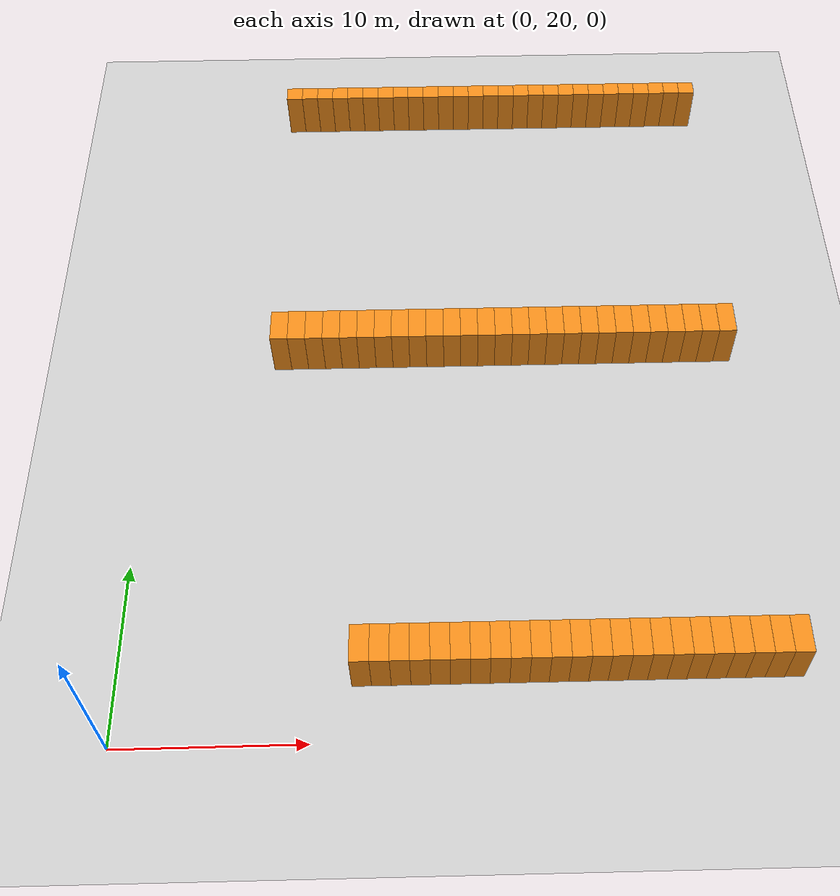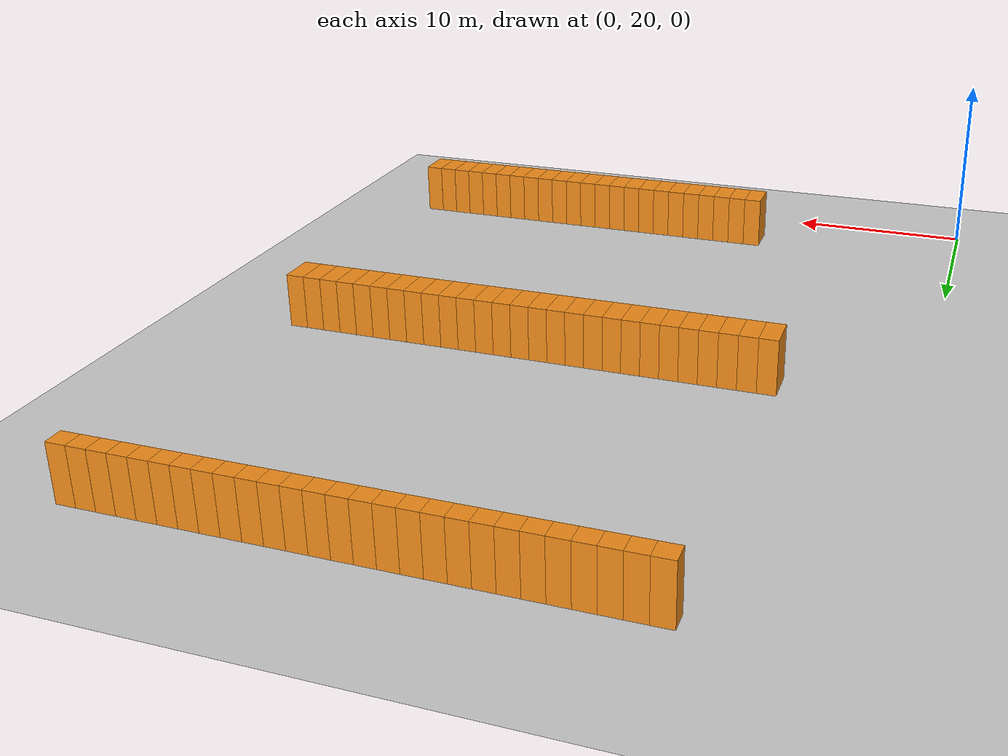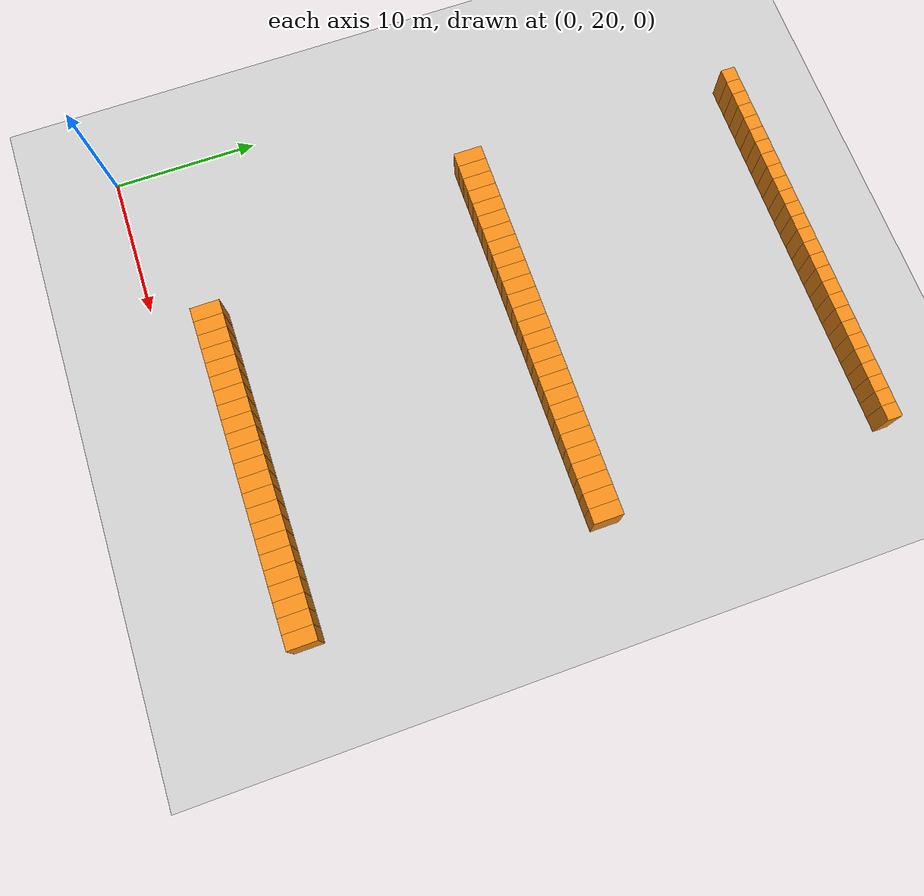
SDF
<sdf version="1.6">
 <world name="default">
  <include><uri>model://ground_plane</uri></include>
  <model name="unit_box_006">
   <pose>7.50    44.00     1.50 0 0 0</pose>
   <static>1</static>
   <link name="link">
    <inertial>
     <mass>5000</mass>
     <inertia><ixx>200</ixx><ixy>0</ixy><ixz>0</ixz><iyy>200</iyy><iyz>0</iyz><izz>200</izz></inertia>
    </inertial>
    <collision name="collision"><geometry><box><size>1 2 3</size></box></geometry></collision>
    <visual name="visual">
     <geometry><box><size>1 2 3</size></box></geometry>
     <material>
      <script><name>Gazebo/Orange</name><uri>file://media/materials/scripts/gazebo.material</uri></script>
     </material>
    </visual>
   </link>
  </model>
  <model name="unit_box_007">
   <pose>7.50    63.50     1.50 0 0 0</pose>
   <static>1</static>
   <link name="link">
    <inertial>
     <mass>5000</mass>
     <inertia><ixx>200</ixx><ixy>0</ixy><ixz>0</ixz><iyy>200</iyy><iyz>0</iyz><izz>200</izz></inertia>
    </inertial>
    <collision name="collision"><geometry><box><size>1 1 3</size></box></geometry></collision>
    <visual name="visual">
     <geometry><box><size>1 1 3</size></box></geometry>
     <material>
      <script><name>Gazebo/Orange</name><uri>file://media/materials/scripts/gazebo.material</uri></script>
     </material>
    </visual>
   </link>
  </model>
  <model name="unit_box_019">
   <pose>8.50    44.00     1.50 0 0 0</pose>
   <static>1</static>
   <link name="link">
    <inertial>
     <mass>5000</mass>
     <inertia><ixx>200</ixx><ixy>0</ixy><ixz>0</ixz><iyy>200</iyy><iyz>0</iyz><izz>200</izz></inertia>
    </inertial>
    <collision name="collision"><geometry><box><size>1 2 3</size></box></geometry></collision>
    <visual name="visual">
     <geometry><box><size>1 2 3</size></box></geometry>
     <material>
      <script><name>Gazebo/Orange</name><uri>file://media/materials/scripts/gazebo.material</uri></script>
     </material>
    </visual>
   </link>
  </model>
  <model name="unit_box_020">
   <pose>8.50    63.50     1.50 0 0 0</pose>
   <static>1</static>
   <link name="link">
    <inertial>
     <mass>5000</mass>
     <inertia><ixx>200</ixx><ixy>0</ixy><ixz>0</ixz><iyy>200</iyy><iyz>0</iyz><izz>200</izz></inertia>
    </inertial>
    <collision name="collision"><geometry><box><size>1 1 3</size></box></geometry></collision>
    <visual name="visual">
     <geometry><box><size>1 1 3</size></box></geometry>
     <material>
      <script><name>Gazebo/Orange</name><uri>file://media/materials/scripts/gazebo.material</uri></script>
     </material>
    </visual>
   </link>
  </model>
  <model name="unit_box_032">
   <pose>9.50    44.00     1.50 0 0 0</pose>
   <static>1</static>
   <link name="link">
    <inertial>
     <mass>5000</mass>
     <inertia><ixx>200</ixx><ixy>0</ixy><ixz>0</ixz><iyy>200</iyy><iyz>0</iyz><izz>200</izz></inertia>
    </inertial>
    <collision name="collision"><geometry><box><size>1 2 3</size></box></geometry></collision>
    <visual name="visual">
     <geometry><box><size>1 2 3</size></box></geometry>
     <material>
      <script><name>Gazebo/Orange</name><uri>file://media/materials/scripts/gazebo.material</uri></script>
     </material>
    </visual>
   </link>
  </model>
  <model name="unit_box_033">
   <pose>9.50    63.50     1.50 0 0 0</pose>
   <static>1</static>
   <link name="link">
    <inertial>
     <mass>5000</mass>
     <inertia><ixx>200</ixx><ixy>0</ixy><ixz>0</ixz><iyy>200</iyy><iyz>0</iyz><izz>200</izz></inertia>
    </inertial>
    <collision name="collision"><geometry><box><size>1 1 3</size></box></geometry></collision>
    <visual name="visual">
     <geometry><box><size>1 1 3</size></box></geometry>
     <material>
      <script><name>Gazebo/Orange</name><uri>file://media/materials/scripts/gazebo.material</uri></script>
     </material>
    </visual>
   </link>
  </model>
  <model name="unit_box_045">
   <pose>10.50    44.00     1.50 0 0 0</pose>
   <static>1</static>
   <link name="link">
    <inertial>
     <mass>5000</mass>
     <inertia><ixx>200</ixx><ixy>0</ixy><ixz>0</ixz><iyy>200</iyy><iyz>0</iyz><izz>200</izz></inertia>
    </inertial>
    <collision name="collision"><geometry><box><size>1 2 3</size></box></geometry></collision>
    <visual name="visual">
     <geometry><box><size>1 2 3</size></box></geometry>
     <material>
      <script><name>Gazebo/Orange</name><uri>file://media/materials/scripts/gazebo.material</uri></script>
     </material>
    </visual>
   </link>
  </model>
  <model name="unit_box_046">
   <pose>10.50    63.50     1.50 0 0 0</pose>
   <static>1</static>
   <link name="link">
    <inertial>
     <mass>5000</mass>
     <inertia><ixx>200</ixx><ixy>0</ixy><ixz>0</ixz><iyy>200</iyy><iyz>0</iyz><izz>200</izz></inertia>
    </inertial>
    <collision name="collision"><geometry><box><size>1 1 3</size></box></geometry></collision>
    <visual name="visual">
     <geometry><box><size>1 1 3</size></box></geometry>
     <material>
      <script><name>Gazebo/Orange</name><uri>file://media/materials/scripts/gazebo.material</uri></script>
     </material>
    </visual>
   </link>
  </model>
  <model name="unit_box_058">
   <pose>11.50    44.00     1.50 0 0 0</pose>
   <static>1</static>
   <link name="link">
    <inertial>
     <mass>5000</mass>
     <inertia><ixx>200</ixx><ixy>0</ixy><ixz>0</ixz><iyy>200</iyy><iyz>0</iyz><izz>200</izz></inertia>
    </inertial>
    <collision name="collision"><geometry><box><size>1 2 3</size></box></geometry></collision>
    <visual name="visual">
     <geometry><box><size>1 2 3</size></box></geometry>
     <material>
      <script><name>Gazebo/Orange</name><uri>file://media/materials/scripts/gazebo.material</uri></script>
     </material>
    </visual>
   </link>
  </model>
  <model name="unit_box_059">
   <pose>11.50    63.50     1.50 0 0 0</pose>
   <static>1</static>
   <link name="link">
    <inertial>
     <mass>5000</mass>
     <inertia><ixx>200</ixx><ixy>0</ixy><ixz>0</ixz><iyy>200</iyy><iyz>0</iyz><izz>200</izz></inertia>
    </inertial>
    <collision name="collision"><geometry><box><size>1 1 3</size></box></geometry></collision>
    <visual name="visual">
     <geometry><box><size>1 1 3</size></box></geometry>
     <material>
      <script><name>Gazebo/Orange</name><uri>file://media/materials/scripts/gazebo.material</uri></script>
     </material>
    </visual>
   </link>
  </model>
  <model name="unit_box_070">
   <pose>12.50    24.00     1.50 0 0 0</pose>
   <static>1</static>
   <link name="link">
    <inertial>
     <mass>5000</mass>
     <inertia><ixx>200</ixx><ixy>0</ixy><ixz>0</ixz><iyy>200</iyy><iyz>0</iyz><izz>200</izz></inertia>
    </inertial>
    <collision name="collision"><geometry><box><size>1 2 3</size></box></geometry></collision>
    <visual name="visual">
     <geometry><box><size>1 2 3</size></box></geometry>
     <material>
      <script><name>Gazebo/Orange</name><uri>file://media/materials/scripts/gazebo.material</uri></script>
     </material>
    </visual>
   </link>
  </model>
  <model name="unit_box_071">
   <pose>12.50    44.00     1.50 0 0 0</pose>
   <static>1</static>
   <link name="link">
    <inertial>
     <mass>5000</mass>
     <inertia><ixx>200</ixx><ixy>0</ixy><ixz>0</ixz><iyy>200</iyy><iyz>0</iyz><izz>200</izz></inertia>
    </inertial>
    <collision name="collision"><geometry><box><size>1 2 3</size></box></geometry></collision>
    <visual name="visual">
     <geometry><box><size>1 2 3</size></box></geometry>
     <material>
      <script><name>Gazebo/Orange</name><uri>file://media/materials/scripts/gazebo.material</uri></script>
     </material>
    </visual>
   </link>
  </model>
  <model name="unit_box_072">
   <pose>12.50    63.50     1.50 0 0 0</pose>
   <static>1</static>
   <link name="link">
    <inertial>
     <mass>5000</mass>
     <inertia><ixx>200</ixx><ixy>0</ixy><ixz>0</ixz><iyy>200</iyy><iyz>0</iyz><izz>200</izz></inertia>
    </inertial>
    <collision name="collision"><geometry><box><size>1 1 3</size></box></geometry></collision>
    <visual name="visual">
     <geometry><box><size>1 1 3</size></box></geometry>
     <material>
      <script><name>Gazebo/Orange</name><uri>file://media/materials/scripts/gazebo.material</uri></script>
     </material>
    </visual>
   </link>
  </model>
  <model name="unit_box_083">
   <pose>13.50    24.00     1.50 0 0 0</pose>
   <static>1</static>
   <link name="link">
    <inertial>
     <mass>5000</mass>
     <inertia><ixx>200</ixx><ixy>0</ixy><ixz>0</ixz><iyy>200</iyy><iyz>0</iyz><izz>200</izz></inertia>
    </inertial>
    <collision name="collision"><geometry><box><size>1 2 3</size></box></geometry></collision>
    <visual name="visual">
     <geometry><box><size>1 2 3</size></box></geometry>
     <material>
      <script><name>Gazebo/Orange</name><uri>file://media/materials/scripts/gazebo.material</uri></script>
     </material>
    </visual>
   </link>
  </model>
  <model name="unit_box_084">
   <pose>13.50    44.00     1.50 0 0 0</pose>
   <static>1</static>
   <link name="link">
    <inertial>
     <mass>5000</mass>
     <inertia><ixx>200</ixx><ixy>0</ixy><ixz>0</ixz><iyy>200</iyy><iyz>0</iyz><izz>200</izz></inertia>
    </inertial>
    <collision name="collision"><geometry><box><size>1 2 3</size></box></geometry></collision>
    <visual name="visual">
     <geometry><box><size>1 2 3</size></box></geometry>
     <material>
      <script><name>Gazebo/Orange</name><uri>file://media/materials/scripts/gazebo.material</uri></script>
     </material>
    </visual>
   </link>
  </model>
  <model name="unit_box_085">
   <pose>13.50    63.50     1.50 0 0 0</pose>
   <static>1</static>
   <link name="link">
    <inertial>
     <mass>5000</mass>
     <inertia><ixx>200</ixx><ixy>0</ixy><ixz>0</ixz><iyy>200</iyy><iyz>0</iyz><izz>200</izz></inertia>
    </inertial>
    <collision name="collision"><geometry><box><size>1 1 3</size></box></geometry></collision>
    <visual name="visual">
     <geometry><box><size>1 1 3</size></box></geometry>
     <material>
      <script><name>Gazebo/Orange</name><uri>file://media/materials/scripts/gazebo.material</uri></script>
     </material>
    </visual>
   </link>
  </model>
  <model name="unit_box_096">
   <pose>14.50    24.00     1.50 0 0 0</pose>
   <static>1</static>
   <link name="link">
    <inertial>
     <mass>5000</mass>
     <inertia><ixx>200</ixx><ixy>0</ixy><ixz>0</ixz><iyy>200</iyy><iyz>0</iyz><izz>200</izz></inertia>
    </inertial>
    <collision name="collision"><geometry><box><size>1 2 3</size></box></geometry></collision>
    <visual name="visual">
     <geometry><box><size>1 2 3</size></box></geometry>
     <material>
      <script><name>Gazebo/Orange</name><uri>file://media/materials/scripts/gazebo.material</uri></script>
     </material>
    </visual>
   </link>
  </model>
  <model name="unit_box_097">
   <pose>14.50    44.00     1.50 0 0 0</pose>
   <static>1</static>
   <link name="link">
    <inertial>
     <mass>5000</mass>
     <inertia><ixx>200</ixx><ixy>0</ixy><ixz>0</ixz><iyy>200</iyy><iyz>0</iyz><izz>200</izz></inertia>
    </inertial>
    <collision name="collision"><geometry><box><size>1 2 3</size></box></geometry></collision>
    <visual name="visual">
     <geometry><box><size>1 2 3</size></box></geometry>
     <material>
      <script><name>Gazebo/Orange</name><uri>file://media/materials/scripts/gazebo.material</uri></script>
     </material>
    </visual>
   </link>
  </model>
  <model name="unit_box_098">
   <pose>14.50    63.50     1.50 0 0 0</pose>
   <static>1</static>
   <link name="link">
    <inertial>
     <mass>5000</mass>
     <inertia><ixx>200</ixx><ixy>0</ixy><ixz>0</ixz><iyy>200</iyy><iyz>0</iyz><izz>200</izz></inertia>
    </inertial>
    <collision name="collision"><geometry><box><size>1 1 3</size></box></geometry></collision>
    <visual name="visual">
     <geometry><box><size>1 1 3</size></box></geometry>
     <material>
      <script><name>Gazebo/Orange</name><uri>file://media/materials/scripts/gazebo.material</uri></script>
     </material>
    </visual>
   </link>
  </model>
  <model name="unit_box_109">
   <pose>15.50    24.00     1.50 0 0 0</pose>
   <static>1</static>
   <link name="link">
    <inertial>
     <mass>5000</mass>
     <inertia><ixx>200</ixx><ixy>0</ixy><ixz>0</ixz><iyy>200</iyy><iyz>0</iyz><izz>200</izz></inertia>
    </inertial>
    <collision name="collision"><geometry><box><size>1 2 3</size></box></geometry></collision>
    <visual name="visual">
     <geometry><box><size>1 2 3</size></box></geometry>
     <material>
      <script><name>Gazebo/Orange</name><uri>file://media/materials/scripts/gazebo.material</uri></script>
     </material>
    </visual>
   </link>
  </model>
  <model name="unit_box_110">
   <pose>15.50    44.00     1.50 0 0 0</pose>
   <static>1</static>
   <link name="link">
    <inertial>
     <mass>5000</mass>
     <inertia><ixx>200</ixx><ixy>0</ixy><ixz>0</ixz><iyy>200</iyy><iyz>0</iyz><izz>200</izz></inertia>
    </inertial>
    <collision name="collision"><geometry><box><size>1 2 3</size></box></geometry></collision>
    <visual name="visual">
     <geometry><box><size>1 2 3</size></box></geometry>
     <material>
      <script><name>Gazebo/Orange</name><uri>file://media/materials/scripts/gazebo.material</uri></script>
     </material>
    </visual>
   </link>
  </model>
  <model name="unit_box_111">
   <pose>15.50    63.50     1.50 0 0 0</pose>
   <static>1</static>
   <link name="link">
    <inertial>
     <mass>5000</mass>
     <inertia><ixx>200</ixx><ixy>0</ixy><ixz>0</ixz><iyy>200</iyy><iyz>0</iyz><izz>200</izz></inertia>
    </inertial>
    <collision name="collision"><geometry><box><size>1 1 3</size></box></geometry></collision>
    <visual name="visual">
     <geometry><box><size>1 1 3</size></box></geometry>
     <material>
      <script><name>Gazebo/Orange</name><uri>file://media/materials/scripts/gazebo.material</uri></script>
     </material>
    </visual>
   </link>
  </model>
  <model name="unit_box_122">
   <pose>16.50    24.00     1.50 0 0 0</pose>
   <static>1</static>
   <link name="link">
    <inertial>
     <mass>5000</mass>
     <inertia><ixx>200</ixx><ixy>0</ixy><ixz>0</ixz><iyy>200</iyy><iyz>0</iyz><izz>200</izz></inertia>
    </inertial>
    <collision name="collision"><geometry><box><size>1 2 3</size></box></geometry></collision>
    <visual name="visual">
     <geometry><box><size>1 2 3</size></box></geometry>
     <material>
      <script><name>Gazebo/Orange</name><uri>file://media/materials/scripts/gazebo.material</uri></script>
     </material>
    </visual>
   </link>
  </model>
  <model name="unit_box_123">
   <pose>16.50    44.00     1.50 0 0 0</pose>
   <static>1</static>
   <link name="link">
    <inertial>
     <mass>5000</mass>
     <inertia><ixx>200</ixx><ixy>0</ixy><ixz>0</ixz><iyy>200</iyy><iyz>0</iyz><izz>200</izz></inertia>
    </inertial>
    <collision name="collision"><geometry><box><size>1 2 3</size></box></geometry></collision>
    <visual name="visual">
     <geometry><box><size>1 2 3</size></box></geometry>
     <material>
      <script><name>Gazebo/Orange</name><uri>file://media/materials/scripts/gazebo.material</uri></script>
     </material>
    </visual>
   </link>
  </model>
  <model name="unit_box_124">
   <pose>16.50    63.50     1.50 0 0 0</pose>
   <static>1</static>
   <link name="link">
    <inertial>
     <mass>5000</mass>
     <inertia><ixx>200</ixx><ixy>0</ixy><ixz>0</ixz><iyy>200</iyy><iyz>0</iyz><izz>200</izz></inertia>
    </inertial>
    <collision name="collision"><geometry><box><size>1 1 3</size></box></geometry></collision>
    <visual name="visual">
     <geometry><box><size>1 1 3</size></box></geometry>
     <material>
      <script><name>Gazebo/Orange</name><uri>file://media/materials/scripts/gazebo.material</uri></script>
     </material>
    </visual>
   </link>
  </model>
  <model name="unit_box_135">
   <pose>17.50    24.00     1.50 0 0 0</pose>
   <static>1</static>
   <link name="link">
    <inertial>
     <mass>5000</mass>
     <inertia><ixx>200</ixx><ixy>0</ixy><ixz>0</ixz><iyy>200</iyy><iyz>0</iyz><izz>200</izz></inertia>
    </inertial>
    <collision name="collision"><geometry><box><size>1 2 3</size></box></geometry></collision>
    <visual name="visual">
     <geometry><box><size>1 2 3</size></box></geometry>
     <material>
      <script><name>Gazebo/Orange</name><uri>file://media/materials/scripts/gazebo.material</uri></script>
     </material>
    </visual>
   </link>
  </model>
  <model name="unit_box_136">
   <pose>17.50    44.00     1.50 0 0 0</pose>
   <static>1</static>
   <link name="link">
    <inertial>
     <mass>5000</mass>
     <inertia><ixx>200</ixx><ixy>0</ixy><ixz>0</ixz><iyy>200</iyy><iyz>0</iyz><izz>200</izz></inertia>
    </inertial>
    <collision name="collision"><geometry><box><size>1 2 3</size></box></geometry></collision>
    <visual name="visual">
     <geometry><box><size>1 2 3</size></box></geometry>
     <material>
      <script><name>Gazebo/Orange</name><uri>file://media/materials/scripts/gazebo.material</uri></script>
     </material>
    </visual>
   </link>
  </model>
  <model name="unit_box_137">
   <pose>17.50    63.50     1.50 0 0 0</pose>
   <static>1</static>
   <link name="link">
    <inertial>
     <mass>5000</mass>
     <inertia><ixx>200</ixx><ixy>0</ixy><ixz>0</ixz><iyy>200</iyy><iyz>0</iyz><izz>200</izz></inertia>
    </inertial>
    <collision name="collision"><geometry><box><size>1 1 3</size></box></geometry></collision>
    <visual name="visual">
     <geometry><box><size>1 1 3</size></box></geometry>
     <material>
      <script><name>Gazebo/Orange</name><uri>file://media/materials/scripts/gazebo.material</uri></script>
     </material>
    </visual>
   </link>
  </model>
  <model name="unit_box_148">
   <pose>18.50    24.00     1.50 0 0 0</pose>
   <static>1</static>
   <link name="link">
    <inertial>
     <mass>5000</mass>
     <inertia><ixx>200</ixx><ixy>0</ixy><ixz>0</ixz><iyy>200</iyy><iyz>0</iyz><izz>200</izz></inertia>
    </inertial>
    <collision name="collision"><geometry><box><size>1 2 3</size></box></geometry></collision>
    <visual name="visual">
     <geometry><box><size>1 2 3</size></box></geometry>
     <material>
      <script><name>Gazebo/Orange</name><uri>file://media/materials/scripts/gazebo.material</uri></script>
     </material>
    </visual>
   </link>
  </model>
  <model name="unit_box_149">
   <pose>18.50    44.00     1.50 0 0 0</pose>
   <static>1</static>
   <link name="link">
    <inertial>
     <mass>5000</mass>
     <inertia><ixx>200</ixx><ixy>0</ixy><ixz>0</ixz><iyy>200</iyy><iyz>0</iyz><izz>200</izz></inertia>
    </inertial>
    <collision name="collision"><geometry><box><size>1 2 3</size></box></geometry></collision>
    <visual name="visual">
     <geometry><box><size>1 2 3</size></box></geometry>
     <material>
      <script><name>Gazebo/Orange</name><uri>file://media/materials/scripts/gazebo.material</uri></script>
     </material>
    </visual>
   </link>
  </model>
  <model name="unit_box_150">
   <pose>18.50    63.50     1.50 0 0 0</pose>
   <static>1</static>
   <link name="link">
    <inertial>
     <mass>5000</mass>
     <inertia><ixx>200</ixx><ixy>0</ixy><ixz>0</ixz><iyy>200</iyy><iyz>0</iyz><izz>200</izz></inertia>
    </inertial>
    <collision name="collision"><geometry><box><size>1 1 3</size></box></geometry></collision>
    <visual name="visual">
     <geometry><box><size>1 1 3</size></box></geometry>
     <material>
      <script><name>Gazebo/Orange</name><uri>file://media/materials/scripts/gazebo.material</uri></script>
     </material>
    </visual>
   </link>
  </model>
  <model name="unit_box_161">
   <pose>19.50    24.00     1.50 0 0 0</pose>
   <static>1</static>
   <link name="link">
    <inertial>
     <mass>5000</mass>
     <inertia><ixx>200</ixx><ixy>0</ixy><ixz>0</ixz><iyy>200</iyy><iyz>0</iyz><izz>200</izz></inertia>
    </inertial>
    <collision name="collision"><geometry><box><size>1 2 3</size></box></geometry></collision>
    <visual name="visual">
     <geometry><box><size>1 2 3</size></box></geometry>
     <material>
      <script><name>Gazebo/Orange</name><uri>file://media/materials/scripts/gazebo.material</uri></script>
     </material>
    </visual>
   </link>
  </model>
  <model name="unit_box_162">
   <pose>19.50    44.00     1.50 0 0 0</pose>
   <static>1</static>
   <link name="link">
    <inertial>
     <mass>5000</mass>
     <inertia><ixx>200</ixx><ixy>0</ixy><ixz>0</ixz><iyy>200</iyy><iyz>0</iyz><izz>200</izz></inertia>
    </inertial>
    <collision name="collision"><geometry><box><size>1 2 3</size></box></geometry></collision>
    <visual name="visual">
     <geometry><box><size>1 2 3</size></box></geometry>
     <material>
      <script><name>Gazebo/Orange</name><uri>file://media/materials/scripts/gazebo.material</uri></script>
     </material>
    </visual>
   </link>
  </model>
  <model name="unit_box_163">
   <pose>19.50    63.50     1.50 0 0 0</pose>
   <static>1</static>
   <link name="link">
    <inertial>
     <mass>5000</mass>
     <inertia><ixx>200</ixx><ixy>0</ixy><ixz>0</ixz><iyy>200</iyy><iyz>0</iyz><izz>200</izz></inertia>
    </inertial>
    <collision name="collision"><geometry><box><size>1 1 3</size></box></geometry></collision>
    <visual name="visual">
     <geometry><box><size>1 1 3</size></box></geometry>
     <material>
      <script><name>Gazebo/Orange</name><uri>file://media/materials/scripts/gazebo.material</uri></script>
     </material>
    </visual>
   </link>
  </model>
  <model name="unit_box_174">
   <pose>20.50    24.00     1.50 0 0 0</pose>
   <static>1</static>
   <link name="link">
    <inertial>
     <mass>5000</mass>
     <inertia><ixx>200</ixx><ixy>0</ixy><ixz>0</ixz><iyy>200</iyy><iyz>0</iyz><izz>200</izz></inertia>
    </inertial>
    <collision name="collision"><geometry><box><size>1 2 3</size></box></geometry></collision>
    <visual name="visual">
     <geometry><box><size>1 2 3</size></box></geometry>
     <material>
      <script><name>Gazebo/Orange</name><uri>file://media/materials/scripts/gazebo.material</uri></script>
     </material>
    </visual>
   </link>
  </model>
  <model name="unit_box_175">
   <pose>20.50    44.00     1.50 0 0 0</pose>
   <static>1</static>
   <link name="link">
    <inertial>
     <mass>5000</mass>
     <inertia><ixx>200</ixx><ixy>0</ixy><ixz>0</ixz><iyy>200</iyy><iyz>0</iyz><izz>200</izz></inertia>
    </inertial>
    <collision name="collision"><geometry><box><size>1 2 3</size></box></geometry></collision>
    <visual name="visual">
     <geometry><box><size>1 2 3</size></box></geometry>
     <material>
      <script><name>Gazebo/Orange</name><uri>file://media/materials/scripts/gazebo.material</uri></script>
     </material>
    </visual>
   </link>
  </model>
  <model name="unit_box_176">
   <pose>20.50    63.50     1.50 0 0 0</pose>
   <static>1</static>
   <link name="link">
    <inertial>
     <mass>5000</mass>
     <inertia><ixx>200</ixx><ixy>0</ixy><ixz>0</ixz><iyy>200</iyy><iyz>0</iyz><izz>200</izz></inertia>
    </inertial>
    <collision name="collision"><geometry><box><size>1 1 3</size></box></geometry></collision>
    <visual name="visual">
     <geometry><box><size>1 1 3</size></box></geometry>
     <material>
      <script><name>Gazebo/Orange</name><uri>file://media/materials/scripts/gazebo.material</uri></script>
     </material>
    </visual>
   </link>
  </model>
  <model name="unit_box_187">
   <pose>21.50    24.00     1.50 0 0 0</pose>
   <static>1</static>
   <link name="link">
    <inertial>
     <mass>5000</mass>
     <inertia><ixx>200</ixx><ixy>0</ixy><ixz>0</ixz><iyy>200</iyy><iyz>0</iyz><izz>200</izz></inertia>
    </inertial>
    <collision name="collision"><geometry><box><size>1 2 3</size></box></geometry></collision>
    <visual name="visual">
     <geometry><box><size>1 2 3</size></box></geometry>
     <material>
      <script><name>Gazebo/Orange</name><uri>file://media/materials/scripts/gazebo.material</uri></script>
     </material>
    </visual>
   </link>
  </model>
  <model name="unit_box_188">
   <pose>21.50    44.00     1.50 0 0 0</pose>
   <static>1</static>
   <link name="link">
    <inertial>
     <mass>5000</mass>
     <inertia><ixx>200</ixx><ixy>0</ixy><ixz>0</ixz><iyy>200</iyy><iyz>0</iyz><izz>200</izz></inertia>
    </inertial>
    <collision name="collision"><geometry><box><size>1 2 3</size></box></geometry></collision>
    <visual name="visual">
     <geometry><box><size>1 2 3</size></box></geometry>
     <material>
      <script><name>Gazebo/Orange</name><uri>file://media/materials/scripts/gazebo.material</uri></script>
     </material>
    </visual>
   </link>
  </model>
  <model name="unit_box_189">
   <pose>21.50    63.50     1.50 0 0 0</pose>
   <static>1</static>
   <link name="link">
    <inertial>
     <mass>5000</mass>
     <inertia><ixx>200</ixx><ixy>0</ixy><ixz>0</ixz><iyy>200</iyy><iyz>0</iyz><izz>200</izz></inertia>
    </inertial>
    <collision name="collision"><geometry><box><size>1 1 3</size></box></geometry></collision>
    <visual name="visual">
     <geometry><box><size>1 1 3</size></box></geometry>
     <material>
      <script><name>Gazebo/Orange</name><uri>file://media/materials/scripts/gazebo.material</uri></script>
     </material>
    </visual>
   </link>
  </model>
  <model name="unit_box_200">
   <pose>22.50    24.00     1.50 0 0 0</pose>
   <static>1</static>
   <link name="link">
    <inertial>
     <mass>5000</mass>
     <inertia><ixx>200</ixx><ixy>0</ixy><ixz>0</ixz><iyy>200</iyy><iyz>0</iyz><izz>200</izz></inertia>
    </inertial>
    <collision name="collision"><geometry><box><size>1 2 3</size></box></geometry></collision>
    <visual name="visual">
     <geometry><box><size>1 2 3</size></box></geometry>
     <material>
      <script><name>Gazebo/Orange</name><uri>file://media/materials/scripts/gazebo.material</uri></script>
     </material>
    </visual>
   </link>
  </model>
  <model name="unit_box_201">
   <pose>22.50    44.00     1.50 0 0 0</pose>
   <static>1</static>
   <link name="link">
    <inertial>
     <mass>5000</mass>
     <inertia><ixx>200</ixx><ixy>0</ixy><ixz>0</ixz><iyy>200</iyy><iyz>0</iyz><izz>200</izz></inertia>
    </inertial>
    <collision name="collision"><geometry><box><size>1 2 3</size></box></geometry></collision>
    <visual name="visual">
     <geometry><box><size>1 2 3</size></box></geometry>
     <material>
      <script><name>Gazebo/Orange</name><uri>file://media/materials/scripts/gazebo.material</uri></script>
     </material>
    </visual>
   </link>
  </model>
  <model name="unit_box_202">
   <pose>22.50    63.50     1.50 0 0 0</pose>
   <static>1</static>
   <link name="link">
    <inertial>
     <mass>5000</mass>
     <inertia><ixx>200</ixx><ixy>0</ixy><ixz>0</ixz><iyy>200</iyy><iyz>0</iyz><izz>200</izz></inertia>
    </inertial>
    <collision name="collision"><geometry><box><size>1 1 3</size></box></geometry></collision>
    <visual name="visual">
     <geometry><box><size>1 1 3</size></box></geometry>
     <material>
      <script><name>Gazebo/Orange</name><uri>file://media/materials/scripts/gazebo.material</uri></script>
     </material>
    </visual>
   </link>
  </model>
  <model name="unit_box_213">
   <pose>23.50    24.00     1.50 0 0 0</pose>
   <static>1</static>
   <link name="link">
    <inertial>
     <mass>5000</mass>
     <inertia><ixx>200</ixx><ixy>0</ixy><ixz>0</ixz><iyy>200</iyy><iyz>0</iyz><izz>200</izz></inertia>
    </inertial>
    <collision name="collision"><geometry><box><size>1 2 3</size></box></geometry></collision>
    <visual name="visual">
     <geometry><box><size>1 2 3</size></box></geometry>
     <material>
      <script><name>Gazebo/Orange</name><uri>file://media/materials/scripts/gazebo.material</uri></script>
     </material>
    </visual>
   </link>
  </model>
  <model name="unit_box_214">
   <pose>23.50    44.00     1.50 0 0 0</pose>
   <static>1</static>
   <link name="link">
    <inertial>
     <mass>5000</mass>
     <inertia><ixx>200</ixx><ixy>0</ixy><ixz>0</ixz><iyy>200</iyy><iyz>0</iyz><izz>200</izz></inertia>
    </inertial>
    <collision name="collision"><geometry><box><size>1 2 3</size></box></geometry></collision>
    <visual name="visual">
     <geometry><box><size>1 2 3</size></box></geometry>
     <material>
      <script><name>Gazebo/Orange</name><uri>file://media/materials/scripts/gazebo.material</uri></script>
     </material>
    </visual>
   </link>
  </model>
  <model name="unit_box_215">
   <pose>23.50    63.50     1.50 0 0 0</pose>
   <static>1</static>
   <link name="link">
    <inertial>
     <mass>5000</mass>
     <inertia><ixx>200</ixx><ixy>0</ixy><ixz>0</ixz><iyy>200</iyy><iyz>0</iyz><izz>200</izz></inertia>
    </inertial>
    <collision name="collision"><geometry><box><size>1 1 3</size></box></geometry></collision>
    <visual name="visual">
     <geometry><box><size>1 1 3</size></box></geometry>
     <material>
      <script><name>Gazebo/Orange</name><uri>file://media/materials/scripts/gazebo.material</uri></script>
     </material>
    </visual>
   </link>
  </model>
  <model name="unit_box_226">
   <pose>24.50    24.00     1.50 0 0 0</pose>
   <static>1</static>
   <link name="link">
    <inertial>
     <mass>5000</mass>
     <inertia><ixx>200</ixx><ixy>0</ixy><ixz>0</ixz><iyy>200</iyy><iyz>0</iyz><izz>200</izz></inertia>
    </inertial>
    <collision name="collision"><geometry><box><size>1 2 3</size></box></geometry></collision>
    <visual name="visual">
     <geometry><box><size>1 2 3</size></box></geometry>
     <material>
      <script><name>Gazebo/Orange</name><uri>file://media/materials/scripts/gazebo.material</uri></script>
     </material>
    </visual>
   </link>
  </model>
  <model name="unit_box_227">
   <pose>24.50    44.00     1.50 0 0 0</pose>
   <static>1</static>
   <link name="link">
    <inertial>
     <mass>5000</mass>
     <inertia><ixx>200</ixx><ixy>0</ixy><ixz>0</ixz><iyy>200</iyy><iyz>0</iyz><izz>200</izz></inertia>
    </inertial>
    <collision name="collision"><geometry><box><size>1 2 3</size></box></geometry></collision>
    <visual name="visual">
     <geometry><box><size>1 2 3</size></box></geometry>
     <material>
      <script><name>Gazebo/Orange</name><uri>file://media/materials/scripts/gazebo.material</uri></script>
     </material>
    </visual>
   </link>
  </model>
  <model name="unit_box_228">
   <pose>24.50    63.50     1.50 0 0 0</pose>
   <static>1</static>
   <link name="link">
    <inertial>
     <mass>5000</mass>
     <inertia><ixx>200</ixx><ixy>0</ixy><ixz>0</ixz><iyy>200</iyy><iyz>0</iyz><izz>200</izz></inertia>
    </inertial>
    <collision name="collision"><geometry><box><size>1 1 3</size></box></geometry></collision>
    <visual name="visual">
     <geometry><box><size>1 1 3</size></box></geometry>
     <material>
      <script><name>Gazebo/Orange</name><uri>file://media/materials/scripts/gazebo.material</uri></script>
     </material>
    </visual>
   </link>
  </model>
  <model name="unit_box_239">
   <pose>25.50    24.00     1.50 0 0 0</pose>
   <static>1</static>
   <link name="link">
    <inertial>
     <mass>5000</mass>
     <inertia><ixx>200</ixx><ixy>0</ixy><ixz>0</ixz><iyy>200</iyy><iyz>0</iyz><izz>200</izz></inertia>
    </inertial>
    <collision name="collision"><geometry><box><size>1 2 3</size></box></geometry></collision>
    <visual name="visual">
     <geometry><box><size>1 2 3</size></box></geometry>
     <material>
      <script><name>Gazebo/Orange</name><uri>file://media/materials/scripts/gazebo.material</uri></script>
     </material>
    </visual>
   </link>
  </model>
  <model name="unit_box_240">
   <pose>25.50    44.00     1.50 0 0 0</pose>
   <static>1</static>
   <link name="link">
    <inertial>
     <mass>5000</mass>
     <inertia><ixx>200</ixx><ixy>0</ixy><ixz>0</ixz><iyy>200</iyy><iyz>0</iyz><izz>200</izz></inertia>
    </inertial>
    <collision name="collision"><geometry><box><size>1 2 3</size></box></geometry></collision>
    <visual name="visual">
     <geometry><box><size>1 2 3</size></box></geometry>
     <material>
      <script><name>Gazebo/Orange</name><uri>file://media/materials/scripts/gazebo.material</uri></script>
     </material>
    </visual>
   </link>
  </model>
  <model name="unit_box_241">
   <pose>25.50    63.50     1.50 0 0 0</pose>
   <static>1</static>
   <link name="link">
    <inertial>
     <mass>5000</mass>
     <inertia><ixx>200</ixx><ixy>0</ixy><ixz>0</ixz><iyy>200</iyy><iyz>0</iyz><izz>200</izz></inertia>
    </inertial>
    <collision name="collision"><geometry><box><size>1 1 3</size></box></geometry></collision>
    <visual name="visual">
     <geometry><box><size>1 1 3</size></box></geometry>
     <material>
      <script><name>Gazebo/Orange</name><uri>file://media/materials/scripts/gazebo.material</uri></script>
     </material>
    </visual>
   </link>
  </model>
  <model name="unit_box_252">
   <pose>26.50    24.00     1.50 0 0 0</pose>
   <static>1</static>
   <link name="link">
    <inertial>
     <mass>5000</mass>
     <inertia><ixx>200</ixx><ixy>0</ixy><ixz>0</ixz><iyy>200</iyy><iyz>0</iyz><izz>200</izz></inertia>
    </inertial>
    <collision name="collision"><geometry><box><size>1 2 3</size></box></geometry></collision>
    <visual name="visual">
     <geometry><box><size>1 2 3</size></box></geometry>
     <material>
      <script><name>Gazebo/Orange</name><uri>file://media/materials/scripts/gazebo.material</uri></script>
     </material>
    </visual>
   </link>
  </model>
  <model name="unit_box_253">
   <pose>26.50    44.00     1.50 0 0 0</pose>
   <static>1</static>
   <link name="link">
    <inertial>
     <mass>5000</mass>
     <inertia><ixx>200</ixx><ixy>0</ixy><ixz>0</ixz><iyy>200</iyy><iyz>0</iyz><izz>200</izz></inertia>
    </inertial>
    <collision name="collision"><geometry><box><size>1 2 3</size></box></geometry></collision>
    <visual name="visual">
     <geometry><box><size>1 2 3</size></box></geometry>
     <material>
      <script><name>Gazebo/Orange</name><uri>file://media/materials/scripts/gazebo.material</uri></script>
     </material>
    </visual>
   </link>
  </model>
  <model name="unit_box_254">
   <pose>26.50    63.50     1.50 0 0 0</pose>
   <static>1</static>
   <link name="link">
    <inertial>
     <mass>5000</mass>
     <inertia><ixx>200</ixx><ixy>0</ixy><ixz>0</ixz><iyy>200</iyy><iyz>0</iyz><izz>200</izz></inertia>
    </inertial>
    <collision name="collision"><geometry><box><size>1 1 3</size></box></geometry></collision>
    <visual name="visual">
     <geometry><box><size>1 1 3</size></box></geometry>
     <material>
      <script><name>Gazebo/Orange</name><uri>file://media/materials/scripts/gazebo.material</uri></script>
     </material>
    </visual>
   </link>
  </model>
  <model name="unit_box_265">
   <pose>27.50    24.00     1.50 0 0 0</pose>
   <static>1</static>
   <link name="link">
    <inertial>
     <mass>5000</mass>
     <inertia><ixx>200</ixx><ixy>0</ixy><ixz>0</ixz><iyy>200</iyy><iyz>0</iyz><izz>200</izz></inertia>
    </inertial>
    <collision name="collision"><geometry><box><size>1 2 3</size></box></geometry></collision>
    <visual name="visual">
     <geometry><box><size>1 2 3</size></box></geometry>
     <material>
      <script><name>Gazebo/Orange</name><uri>file://media/materials/scripts/gazebo.material</uri></script>
     </material>
    </visual>
   </link>
  </model>
  <model name="unit_box_266">
   <pose>27.50    44.00     1.50 0 0 0</pose>
   <static>1</static>
   <link name="link">
    <inertial>
     <mass>5000</mass>
     <inertia><ixx>200</ixx><ixy>0</ixy><ixz>0</ixz><iyy>200</iyy><iyz>0</iyz><izz>200</izz></inertia>
    </inertial>
    <collision name="collision"><geometry><box><size>1 2 3</size></box></geometry></collision>
    <visual name="visual">
     <geometry><box><size>1 2 3</size></box></geometry>
     <material>
      <script><name>Gazebo/Orange</name><uri>file://media/materials/scripts/gazebo.material</uri></script>
     </material>
    </visual>
   </link>
  </model>
  <model name="unit_box_267">
   <pose>27.50    63.50     1.50 0 0 0</pose>
   <static>1</static>
   <link name="link">
    <inertial>
     <mass>5000</mass>
     <inertia><ixx>200</ixx><ixy>0</ixy><ixz>0</ixz><iyy>200</iyy><iyz>0</iyz><izz>200</izz></inertia>
    </inertial>
    <collision name="collision"><geometry><box><size>1 1 3</size></box></geometry></collision>
    <visual name="visual">
     <geometry><box><size>1 1 3</size></box></geometry>
     <material>
      <script><name>Gazebo/Orange</name><uri>file://media/materials/scripts/gazebo.material</uri></script>
     </material>
    </visual>
   </link>
  </model>
  <model name="unit_box_278">
   <pose>28.50    24.00     1.50 0 0 0</pose>
   <static>1</static>
   <link name="link">
    <inertial>
     <mass>5000</mass>
     <inertia><ixx>200</ixx><ixy>0</ixy><ixz>0</ixz><iyy>200</iyy><iyz>0</iyz><izz>200</izz></inertia>
    </inertial>
    <collision name="collision"><geometry><box><size>1 2 3</size></box></geometry></collision>
    <visual name="visual">
     <geometry><box><size>1 2 3</size></box></geometry>
     <material>
      <script><name>Gazebo/Orange</name><uri>file://media/materials/scripts/gazebo.material</uri></script>
     </material>
    </visual>
   </link>
  </model>
  <model name="unit_box_279">
   <pose>28.50    44.00     1.50 0 0 0</pose>
   <static>1</static>
   <link name="link">
    <inertial>
     <mass>5000</mass>
     <inertia><ixx>200</ixx><ixy>0</ixy><ixz>0</ixz><iyy>200</iyy><iyz>0</iyz><izz>200</izz></inertia>
    </inertial>
    <collision name="collision"><geometry><box><size>1 2 3</size></box></geometry></collision>
    <visual name="visual">
     <geometry><box><size>1 2 3</size></box></geometry>
     <material>
      <script><name>Gazebo/Orange</name><uri>file://media/materials/scripts/gazebo.material</uri></script>
     </material>
    </visual>
   </link>
  </model>
  <model name="unit_box_280">
   <pose>28.50    63.50     1.50 0 0 0</pose>
   <static>1</static>
   <link name="link">
    <inertial>
     <mass>5000</mass>
     <inertia><ixx>200</ixx><ixy>0</ixy><ixz>0</ixz><iyy>200</iyy><iyz>0</iyz><izz>200</izz></inertia>
    </inertial>
    <collision name="collision"><geometry><box><size>1 1 3</size></box></geometry></collision>
    <visual name="visual">
     <geometry><box><size>1 1 3</size></box></geometry>
     <material>
      <script><name>Gazebo/Orange</name><uri>file://media/materials/scripts/gazebo.material</uri></script>
     </material>
    </visual>
   </link>
  </model>
  <model name="unit_box_291">
   <pose>29.50    24.00     1.50 0 0 0</pose>
   <static>1</static>
   <link name="link">
    <inertial>
     <mass>5000</mass>
     <inertia><ixx>200</ixx><ixy>0</ixy><ixz>0</ixz><iyy>200</iyy><iyz>0</iyz><izz>200</izz></inertia>
    </inertial>
    <collision name="collision"><geometry><box><size>1 2 3</size></box></geometry></collision>
    <visual name="visual">
     <geometry><box><size>1 2 3</size></box></geometry>
     <material>
      <script><name>Gazebo/Orange</name><uri>file://media/materials/scripts/gazebo.material</uri></script>
     </material>
    </visual>
   </link>
  </model>
  <model name="unit_box_292">
   <pose>29.50    44.00     1.50 0 0 0</pose>
   <static>1</static>
   <link name="link">
    <inertial>
     <mass>5000</mass>
     <inertia><ixx>200</ixx><ixy>0</ixy><ixz>0</ixz><iyy>200</iyy><iyz>0</iyz><izz>200</izz></inertia>
    </inertial>
    <collision name="collision"><geometry><box><size>1 2 3</size></box></geometry></collision>
    <visual name="visual">
     <geometry><box><size>1 2 3</size></box></geometry>
     <material>
      <script><name>Gazebo/Orange</name><uri>file://media/materials/scripts/gazebo.material</uri></script>
     </material>
    </visual>
   </link>
  </model>
  <model name="unit_box_293">
   <pose>29.50    63.50     1.50 0 0 0</pose>
   <static>1</static>
   <link name="link">
    <inertial>
     <mass>5000</mass>
     <inertia><ixx>200</ixx><ixy>0</ixy><ixz>0</ixz><iyy>200</iyy><iyz>0</iyz><izz>200</izz></inertia>
    </inertial>
    <collision name="collision"><geometry><box><size>1 1 3</size></box></geometry></collision>
    <visual name="visual">
     <geometry><box><size>1 1 3</size></box></geometry>
     <material>
      <script><name>Gazebo/Orange</name><uri>file://media/materials/scripts/gazebo.material</uri></script>
     </material>
    </visual>
   </link>
  </model>
  <model name="unit_box_304">
   <pose>30.50    24.00     1.50 0 0 0</pose>
   <static>1</static>
   <link name="link">
    <inertial>
     <mass>5000</mass>
     <inertia><ixx>200</ixx><ixy>0</ixy><ixz>0</ixz><iyy>200</iyy><iyz>0</iyz><izz>200</izz></inertia>
    </inertial>
    <collision name="collision"><geometry><box><size>1 2 3</size></box></geometry></collision>
    <visual name="visual">
     <geometry><box><size>1 2 3</size></box></geometry>
     <material>
      <script><name>Gazebo/Orange</name><uri>file://media/materials/scripts/gazebo.material</uri></script>
     </material>
    </visual>
   </link>
  </model>
  <model name="unit_box_305">
   <pose>30.50    44.00     1.50 0 0 0</pose>
   <static>1</static>
   <link name="link">
    <inertial>
     <mass>5000</mass>
     <inertia><ixx>200</ixx><ixy>0</ixy><ixz>0</ixz><iyy>200</iyy><iyz>0</iyz><izz>200</izz></inertia>
    </inertial>
    <collision name="collision"><geometry><box><size>1 2 3</size></box></geometry></collision>
    <visual name="visual">
     <geometry><box><size>1 2 3</size></box></geometry>
     <material>
      <script><name>Gazebo/Orange</name><uri>file://media/materials/scripts/gazebo.material</uri></script>
     </material>
    </visual>
   </link>
  </model>
  <model name="unit_box_306">
   <pose>30.50    63.50     1.50 0 0 0</pose>
   <static>1</static>
   <link name="link">
    <inertial>
     <mass>5000</mass>
     <inertia><ixx>200</ixx><ixy>0</ixy><ixz>0</ixz><iyy>200</iyy><iyz>0</iyz><izz>200</izz></inertia>
    </inertial>
    <collision name="collision"><geometry><box><size>1 1 3</size></box></geometry></collision>
    <visual name="visual">
     <geometry><box><size>1 1 3</size></box></geometry>
     <material>
      <script><name>Gazebo/Orange</name><uri>file://media/materials/scripts/gazebo.material</uri></script>
     </material>
    </visual>
   </link>
  </model>
  <model name="unit_box_317">
   <pose>31.50    24.00     1.50 0 0 0</pose>
   <static>1</static>
   <link name="link">
    <inertial>
     <mass>5000</mass>
     <inertia><ixx>200</ixx><ixy>0</ixy><ixz>0</ixz><iyy>200</iyy><iyz>0</iyz><izz>200</izz></inertia>
    </inertial>
    <collision name="collision"><geometry><box><size>1 2 3</size></box></geometry></collision>
    <visual name="visual">
     <geometry><box><size>1 2 3</size></box></geometry>
     <material>
      <script><name>Gazebo/Orange</name><uri>file://media/materials/scripts/gazebo.material</uri></script>
     </material>
    </visual>
   </link>
  </model>
  <model name="unit_box_318">
   <pose>31.50    44.00     1.50 0 0 0</pose>
   <static>1</static>
   <link name="link">
    <inertial>
     <mass>5000</mass>
     <inertia><ixx>200</ixx><ixy>0</ixy><ixz>0</ixz><iyy>200</iyy><iyz>0</iyz><izz>200</izz></inertia>
    </inertial>
    <collision name="collision"><geometry><box><size>1 2 3</size></box></geometry></collision>
    <visual name="visual">
     <geometry><box><size>1 2 3</size></box></geometry>
     <material>
      <script><name>Gazebo/Orange</name><uri>file://media/materials/scripts/gazebo.material</uri></script>
     </material>
    </visual>
   </link>
  </model>
  <model name="unit_box_319">
   <pose>31.50    63.50     1.50 0 0 0</pose>
   <static>1</static>
   <link name="link">
    <inertial>
     <mass>5000</mass>
     <inertia><ixx>200</ixx><ixy>0</ixy><ixz>0</ixz><iyy>200</iyy><iyz>0</iyz><izz>200</izz></inertia>
    </inertial>
    <collision name="collision"><geometry><box><size>1 1 3</size></box></geometry></collision>
    <visual name="visual">
     <geometry><box><size>1 1 3</size></box></geometry>
     <material>
      <script><name>Gazebo/Orange</name><uri>file://media/materials/scripts/gazebo.material</uri></script>
     </material>
    </visual>
   </link>
  </model>
  <model name="unit_box_330">
   <pose>32.50    24.00     1.50 0 0 0</pose>
   <static>1</static>
   <link name="link">
    <inertial>
     <mass>5000</mass>
     <inertia><ixx>200</ixx><ixy>0</ixy><ixz>0</ixz><iyy>200</iyy><iyz>0</iyz><izz>200</izz></inertia>
    </inertial>
    <collision name="collision"><geometry><box><size>1 2 3</size></box></geometry></collision>
    <visual name="visual">
     <geometry><box><size>1 2 3</size></box></geometry>
     <material>
      <script><name>Gazebo/Orange</name><uri>file://media/materials/scripts/gazebo.material</uri></script>
     </material>
    </visual>
   </link>
  </model>
  <model name="unit_box_331">
   <pose>32.50    44.00     1.50 0 0 0</pose>
   <static>1</static>
   <link name="link">
    <inertial>
     <mass>5000</mass>
     <inertia><ixx>200</ixx><ixy>0</ixy><ixz>0</ixz><iyy>200</iyy><iyz>0</iyz><izz>200</izz></inertia>
    </inertial>
    <collision name="collision"><geometry><box><size>1 2 3</size></box></geometry></collision>
    <visual name="visual">
     <geometry><box><size>1 2 3</size></box></geometry>
     <material>
      <script><name>Gazebo/Orange</name><uri>file://media/materials/scripts/gazebo.material</uri></script>
     </material>
    </visual>
   </link>
  </model>
  <model name="unit_box_332">
   <pose>32.50    63.50     1.50 0 0 0</pose>
   <static>1</static>
   <link name="link">
    <inertial>
     <mass>5000</mass>
     <inertia><ixx>200</ixx><ixy>0</ixy><ixz>0</ixz><iyy>200</iyy><iyz>0</iyz><izz>200</izz></inertia>
    </inertial>
    <collision name="collision"><geometry><box><size>1 1 3</size></box></geometry></collision>
    <visual name="visual">
     <geometry><box><size>1 1 3</size></box></geometry>
     <material>
      <script><name>Gazebo/Orange</name><uri>file://media/materials/scripts/gazebo.material</uri></script>
     </material>
    </visual>
   </link>
  </model>
  <model name="unit_box_343">
   <pose>33.50    24.00     1.50 0 0 0</pose>
   <static>1</static>
   <link name="link">
    <inertial>
     <mass>5000</mass>
     <inertia><ixx>200</ixx><ixy>0</ixy><ixz>0</ixz><iyy>200</iyy><iyz>0</iyz><izz>200</izz></inertia>
    </inertial>
    <collision name="collision"><geometry><box><size>1 2 3</size></box></geometry></collision>
    <visual name="visual">
     <geometry><box><size>1 2 3</size></box></geometry>
     <material>
      <script><name>Gazebo/Orange</name><uri>file://media/materials/scripts/gazebo.material</uri></script>
     </material>
    </visual>
   </link>
  </model>
  <model name="unit_box_344">
   <pose>33.50    44.00     1.50 0 0 0</pose>
   <static>1</static>
   <link name="link">
    <inertial>
     <mass>5000</mass>
     <inertia><ixx>200</ixx><ixy>0</ixy><ixz>0</ixz><iyy>200</iyy><iyz>0</iyz><izz>200</izz></inertia>
    </inertial>
    <collision name="collision"><geometry><box><size>1 2 3</size></box></geometry></collision>
    <visual name="visual">
     <geometry><box><size>1 2 3</size></box></geometry>
     <material>
      <script><name>Gazebo/Orange</name><uri>file://media/materials/scripts/gazebo.material</uri></script>
     </material>
    </visual>
   </link>
  </model>
  <model name="unit_box_345">
   <pose>33.50    63.50     1.50 0 0 0</pose>
   <static>1</static>
   <link name="link">
    <inertial>
     <mass>5000</mass>
     <inertia><ixx>200</ixx><ixy>0</ixy><ixz>0</ixz><iyy>200</iyy><iyz>0</iyz><izz>200</izz></inertia>
    </inertial>
    <collision name="collision"><geometry><box><size>1 1 3</size></box></geometry></collision>
    <visual name="visual">
     <geometry><box><size>1 1 3</size></box></geometry>
     <material>
      <script><name>Gazebo/Orange</name><uri>file://media/materials/scripts/gazebo.material</uri></script>
     </material>
    </visual>
   </link>
  </model>
  <model name="unit_box_356">
   <pose>34.50    24.00     1.50 0 0 0</pose>
   <static>1</static>
   <link name="link">
    <inertial>
     <mass>5000</mass>
     <inertia><ixx>200</ixx><ixy>0</ixy><ixz>0</ixz><iyy>200</iyy><iyz>0</iyz><izz>200</izz></inertia>
    </inertial>
    <collision name="collision"><geometry><box><size>1 2 3</size></box></geometry></collision>
    <visual name="visual">
     <geometry><box><size>1 2 3</size></box></geometry>
     <material>
      <script><name>Gazebo/Orange</name><uri>file://media/materials/scripts/gazebo.material</uri></script>
     </material>
    </visual>
   </link>
  </model>
 </world>
</sdf>
